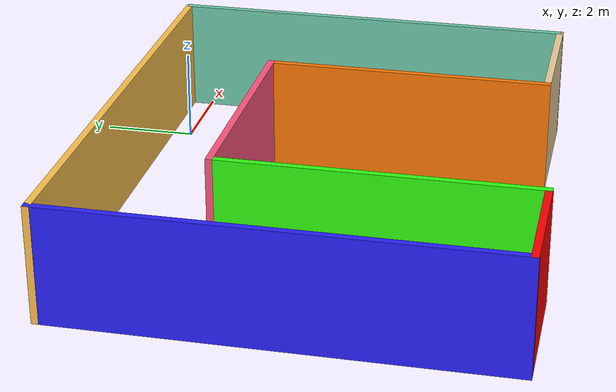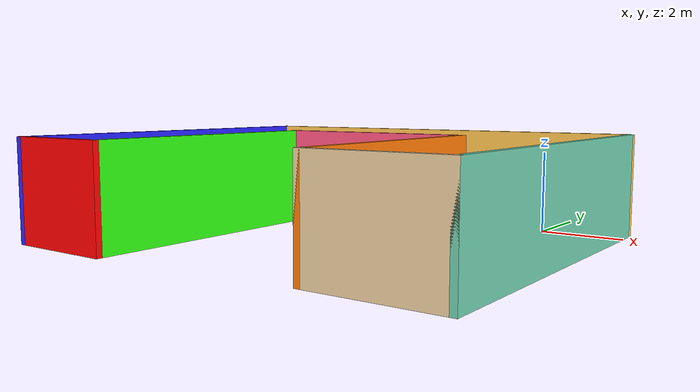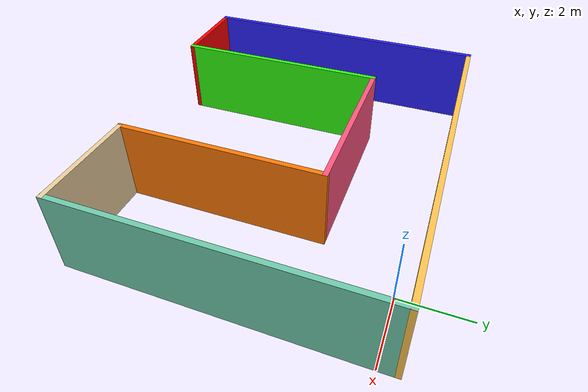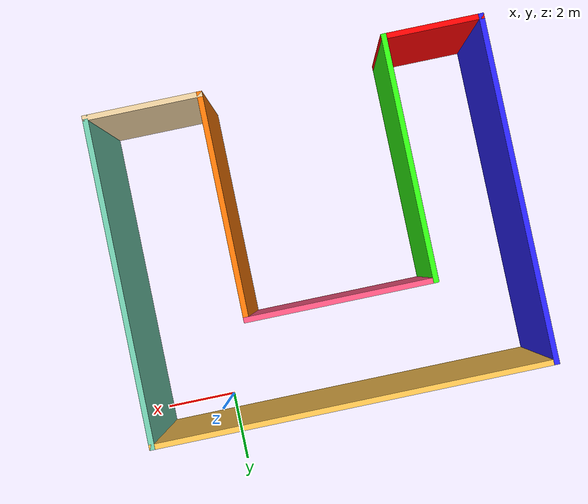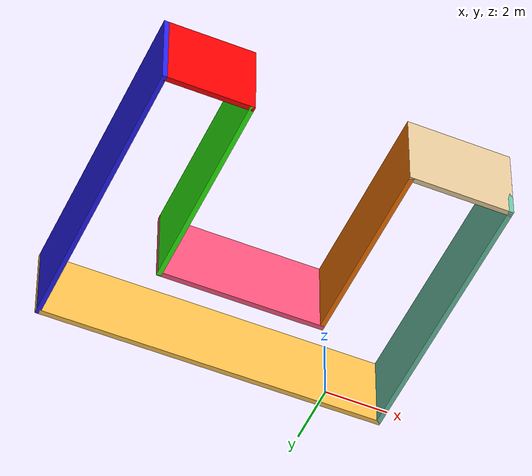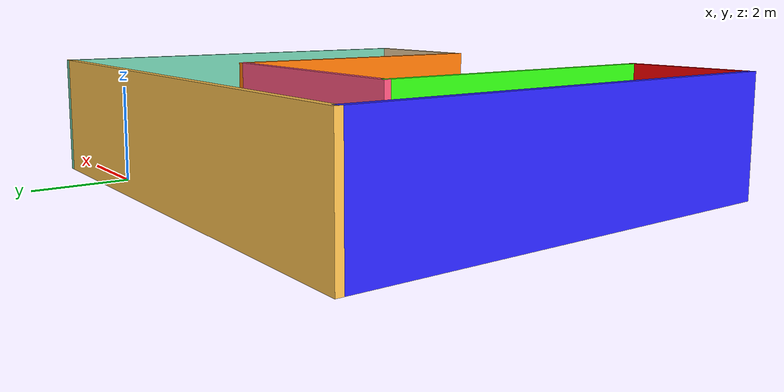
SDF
<?xml version='1.0'?>
<sdf version='1.6'>
  <model name='Alaa'>
    <pose frame=''>-3.485 -4.175 0 0 -0 0</pose>
    <link name='Wall_0'>
      <collision name='Wall_0_Collision'>
        <geometry>
          <box>
            <size>6.25 0.15 2.5</size>
          </box>
        </geometry>
        <pose frame=''>0 0 1.25 0 -0 0</pose>
      </collision>
      <visual name='Wall_0_Visual'>
        <pose frame=''>0 0 1.25 0 -0 0</pose>
        <geometry>
          <box>
            <size>6.25 0.15 2.5</size>
          </box>
        </geometry>
        <material>
          <script>
            <uri>file://media/materials/scripts/gazebo.material</uri>
            <name>Gazebo/Grey</name>
          </script>
          <ambient>0.996078 0.47451 0.0196078 1</ambient>
        </material>
        <meta>
          <layer>0</layer>
        </meta>
      </visual>
      <pose frame=''>2.325 -1.125 0 0 0 -1.5708</pose>
    </link>
    <link name='Wall_1'>
      <collision name='Wall_1_Collision'>
        <geometry>
          <box>
            <size>3.25 0.15 2.5</size>
          </box>
        </geometry>
        <pose frame=''>0 0 1.25 0 -0 0</pose>
      </collision>
      <visual name='Wall_1_Visual'>
        <pose frame=''>0 0 1.25 0 -0 0</pose>
        <geometry>
          <box>
            <size>3.25 0.15 2.5</size>
          </box>
        </geometry>
        <material>
          <script>
            <uri>file://media/materials/scripts/gazebo.material</uri>
            <name>Gazebo/Grey</name>
          </script>
          <ambient>0.921569 0.807843 0.615686 1</ambient>
        </material>
        <meta>
          <layer>0</layer>
        </meta>
      </visual>
      <pose frame=''>3.875 -4.175 0 0 -0 0</pose>
    </link>
    <link name='Wall_11'>
      <collision name='Wall_11_Collision'>
        <geometry>
          <box>
            <size>5.25 0.15 2.5</size>
          </box>
        </geometry>
        <pose frame=''>0 0 1.25 0 -0 0</pose>
      </collision>
      <visual name='Wall_11_Visual'>
        <pose frame=''>0 0 1.25 0 -0 0</pose>
        <geometry>
          <box>
            <size>5.25 0.15 2.5</size>
          </box>
        </geometry>
        <material>
          <script>
            <uri>file://media/materials/scripts/gazebo.material</uri>
            <name>Gazebo/Grey</name>
          </script>
          <ambient>1 0.333333 0.498039 1</ambient>
        </material>
        <meta>
          <layer>0</layer>
        </meta>
      </visual>
      <pose frame=''>-0.225 1.925 0 0 -0 3.14159</pose>
    </link>
    <link name='Wall_12'>
      <collision name='Wall_12_Collision'>
        <geometry>
          <box>
            <size>6.75 0.15 2.5</size>
          </box>
        </geometry>
        <pose frame=''>0 0 1.25 0 -0 0</pose>
      </collision>
      <visual name='Wall_12_Visual'>
        <pose frame=''>0 0 1.25 0 -0 0</pose>
        <geometry>
          <box>
            <size>6.75 0.15 2.5</size>
          </box>
        </geometry>
        <material>
          <script>
            <uri>file://media/materials/scripts/gazebo.material</uri>
            <name>Gazebo/Grey</name>
          </script>
          <ambient>0.188235 1 0.0627451 1</ambient>
        </material>
        <meta>
          <layer>0</layer>
        </meta>
      </visual>
      <pose frame=''>-2.775 -1.375 0 0 0 -1.5708</pose>
    </link>
    <link name='Wall_14'>
      <collision name='Wall_14_Collision'>
        <geometry>
          <box>
            <size>2.8 0.15 2.5</size>
          </box>
        </geometry>
        <pose frame=''>0 0 1.25 0 -0 0</pose>
      </collision>
      <visual name='Wall_14_Visual'>
        <pose frame=''>0 0 1.25 0 -0 0</pose>
        <geometry>
          <box>
            <size>2.8 0.15 2.5</size>
          </box>
        </geometry>
        <material>
          <script>
            <uri>file://media/materials/scripts/gazebo.material</uri>
            <name>Gazebo/Grey</name>
          </script>
          <ambient>1 0 0 1</ambient>
        </material>
        <meta>
          <layer>0</layer>
        </meta>
      </visual>
      <pose frame=''>-4.1 -4.675 0 0 -0 3.14159</pose>
    </link>
    <link name='Wall_2'>
      <collision name='Wall_2_Collision'>
        <geometry>
          <box>
            <size>9 0.15 2.5</size>
          </box>
        </geometry>
        <pose frame=''>0 0 1.25 0 -0 0</pose>
      </collision>
      <visual name='Wall_2_Visual'>
        <pose frame=''>0 0 1.25 0 -0 0</pose>
        <geometry>
          <box>
            <size>9 0.15 2.5</size>
          </box>
        </geometry>
        <material>
          <script>
            <uri>file://media/materials/scripts/gazebo.material</uri>
            <name>Gazebo/Grey</name>
          </script>
          <ambient>0.435294 0.796078 0.67451 1</ambient>
        </material>
        <meta>
          <layer>0</layer>
        </meta>
      </visual>
      <pose frame=''>5.425 0.25 0 0 -0 1.5708</pose>
    </link>
    <link name='Wall_3'>
      <collision name='Wall_3_Collision'>
        <geometry>
          <box>
            <size>11 0.15 2.5</size>
          </box>
        </geometry>
        <pose frame=''>0 0 1.25 0 -0 0</pose>
      </collision>
      <visual name='Wall_3_Visual'>
        <pose frame=''>0 0 1.25 0 -0 0</pose>
        <geometry>
          <box>
            <size>11 0.15 2.5</size>
          </box>
        </geometry>
        <material>
          <script>
            <uri>file://media/materials/scripts/gazebo.material</uri>
            <name>Gazebo/Grey</name>
          </script>
          <ambient>1 0.764706 0.305882 1</ambient>
        </material>
        <meta>
          <layer>0</layer>
        </meta>
      </visual>
      <pose frame=''>0 4.675 0 0 -0 3.14159</pose>
    </link>
    <link name='Wall_4'>
      <collision name='Wall_4_Collision'>
        <geometry>
          <box>
            <size>9.5 0.15 2.5</size>
          </box>
        </geometry>
        <pose frame=''>0 0 1.25 0 -0 0</pose>
      </collision>
      <visual name='Wall_4_Visual'>
        <pose frame=''>0 0 1.25 0 -0 0</pose>
        <geometry>
          <box>
            <size>9.5 0.15 2.5</size>
          </box>
        </geometry>
        <material>
          <script>
            <uri>file://media/materials/scripts/gazebo.material</uri>
            <name>Gazebo/Grey</name>
          </script>
          <ambient>0.160784 0.133333 1 1</ambient>
        </material>
        <meta>
          <layer>0</layer>
        </meta>
      </visual>
      <pose frame=''>-5.425 0 0 0 0 -1.5708</pose>
    </link>
    <static>1</static>
  </model>
</sdf>
